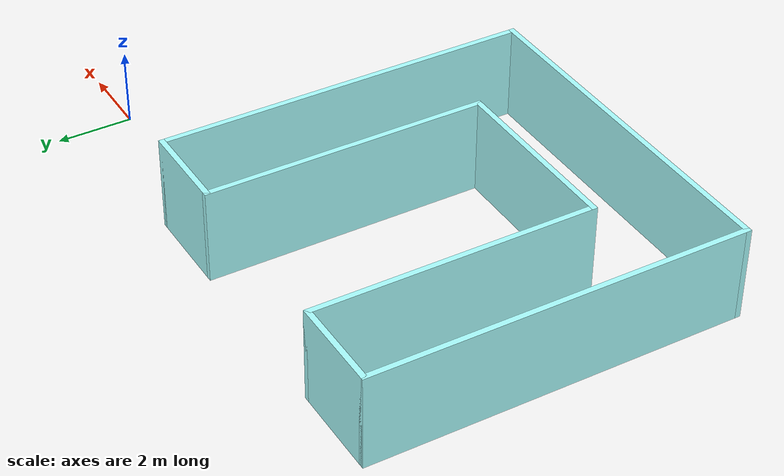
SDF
<?xml version='1.0'?>
<sdf version='1.6'>
  <model name='test_house'>
    <pose frame=''>-9.41906 -3.85062 0 0 -0 0</pose>
    <link name='Wall_0'>
      <collision name='Wall_0_Collision'>
        <geometry>
          <box>
            <size>2.5 0.15 2.5</size>
          </box>
        </geometry>
        <pose frame=''>0 0 1.25 0 -0 0</pose>
      </collision>
      <visual name='Wall_0_Visual'>
        <pose frame=''>0 0 1.25 0 -0 0</pose>
        <geometry>
          <box>
            <size>2.5 0.15 2.5</size>
          </box>
        </geometry>
        <material>
          <script>
            <uri>file://media/materials/scripts/gazebo.material</uri>
            <name>Gazebo/Grey</name>
          </script>
          <ambient>0.666667 1 1 1</ambient>
        </material>
        <meta>
          <layer>0</layer>
        </meta>
      </visual>
      <pose frame=''>-3.575 4.925 0 0 -0 0</pose>
    </link>
    <link name='Wall_1'>
      <collision name='Wall_1_Collision'>
        <geometry>
          <box>
            <size>7.5 0.15 2.5</size>
          </box>
        </geometry>
        <pose frame=''>0 0 1.25 0 -0 0</pose>
      </collision>
      <visual name='Wall_1_Visual'>
        <pose frame=''>0 0 1.25 0 -0 0</pose>
        <geometry>
          <box>
            <size>7.5 0.15 2.5</size>
          </box>
        </geometry>
        <material>
          <script>
            <uri>file://media/materials/scripts/gazebo.material</uri>
            <name>Gazebo/Grey</name>
          </script>
          <ambient>0.666667 1 1 1</ambient>
        </material>
        <meta>
          <layer>0</layer>
        </meta>
      </visual>
      <pose frame=''>-2.4 1.25 0 0 0 -1.5708</pose>
    </link>
    <link name='Wall_2'>
      <collision name='Wall_2_Collision'>
        <geometry>
          <box>
            <size>5 0.15 2.5</size>
          </box>
        </geometry>
        <pose frame=''>0 0 1.25 0 -0 0</pose>
      </collision>
      <visual name='Wall_2_Visual'>
        <pose frame=''>0 0 1.25 0 -0 0</pose>
        <geometry>
          <box>
            <size>5 0.15 2.5</size>
          </box>
        </geometry>
        <material>
          <script>
            <uri>file://media/materials/scripts/gazebo.material</uri>
            <name>Gazebo/Grey</name>
          </script>
          <ambient>0.666667 1 1 1</ambient>
        </material>
        <meta>
          <layer>0</layer>
        </meta>
      </visual>
      <pose frame=''>0.025 -2.425 0 0 -0 0</pose>
    </link>
    <link name='Wall_3'>
      <collision name='Wall_3_Collision'>
        <geometry>
          <box>
            <size>7.5 0.15 2.5</size>
          </box>
        </geometry>
        <pose frame=''>0 0 1.25 0 -0 0</pose>
      </collision>
      <visual name='Wall_3_Visual'>
        <pose frame=''>0 0 1.25 0 -0 0</pose>
        <geometry>
          <box>
            <size>7.5 0.15 2.5</size>
          </box>
        </geometry>
        <material>
          <script>
            <uri>file://media/materials/scripts/gazebo.material</uri>
            <name>Gazebo/Grey</name>
          </script>
          <ambient>0.666667 1 1 1</ambient>
        </material>
        <meta>
          <layer>0</layer>
        </meta>
      </visual>
      <pose frame=''>2.45 1.25 0 0 -0 1.5708</pose>
    </link>
    <link name='Wall_4'>
      <collision name='Wall_4_Collision'>
        <geometry>
          <box>
            <size>2.5 0.15 2.5</size>
          </box>
        </geometry>
        <pose frame=''>0 0 1.25 0 -0 0</pose>
      </collision>
      <visual name='Wall_4_Visual'>
        <pose frame=''>0 0 1.25 0 -0 0</pose>
        <geometry>
          <box>
            <size>2.5 0.15 2.5</size>
          </box>
        </geometry>
        <material>
          <script>
            <uri>file://media/materials/scripts/gazebo.material</uri>
            <name>Gazebo/Grey</name>
          </script>
          <ambient>0.666667 1 1 1</ambient>
        </material>
        <meta>
          <layer>0</layer>
        </meta>
      </visual>
      <pose frame=''>3.625 4.925 0 0 -0 0</pose>
    </link>
    <link name='Wall_5'>
      <collision name='Wall_5_Collision'>
        <geometry>
          <box>
            <size>10 0.15 2.5</size>
          </box>
        </geometry>
        <pose frame=''>0 0 1.25 0 -0 0</pose>
      </collision>
      <visual name='Wall_5_Visual'>
        <pose frame=''>0 0 1.25 0 -0 0</pose>
        <geometry>
          <box>
            <size>10 0.15 2.5</size>
          </box>
        </geometry>
        <material>
          <script>
            <uri>file://media/materials/scripts/gazebo.material</uri>
            <name>Gazebo/Grey</name>
          </script>
          <ambient>0.666667 1 1 1</ambient>
        </material>
        <meta>
          <layer>0</layer>
        </meta>
      </visual>
      <pose frame=''>4.8 0 0 0 0 -1.5708</pose>
    </link>
    <link name='Wall_6'>
      <collision name='Wall_6_Collision'>
        <geometry>
          <box>
            <size>9.75 0.15 2.5</size>
          </box>
        </geometry>
        <pose frame=''>0 0 1.25 0 -0 0</pose>
      </collision>
      <visual name='Wall_6_Visual'>
        <pose frame=''>0 0 1.25 0 -0 0</pose>
        <geometry>
          <box>
            <size>9.75 0.15 2.5</size>
          </box>
        </geometry>
        <material>
          <script>
            <uri>file://media/materials/scripts/gazebo.material</uri>
            <name>Gazebo/Grey</name>
          </script>
          <ambient>0.666667 1 1 1</ambient>
        </material>
        <meta>
          <layer>0</layer>
        </meta>
      </visual>
      <pose frame=''>0 -4.925 0 0 -0 3.14159</pose>
    </link>
    <link name='Wall_9'>
      <collision name='Wall_9_Collision'>
        <geometry>
          <box>
            <size>10 0.15 2.5</size>
          </box>
        </geometry>
        <pose frame=''>0 0 1.25 0 -0 0</pose>
      </collision>
      <visual name='Wall_9_Visual'>
        <pose frame=''>0 0 1.25 0 -0 0</pose>
        <geometry>
          <box>
            <size>10 0.15 2.5</size>
          </box>
        </geometry>
        <material>
          <script>
            <uri>file://media/materials/scripts/gazebo.material</uri>
            <name>Gazebo/Grey</name>
          </script>
          <ambient>0.666667 1 1 1</ambient>
        </material>
        <meta>
          <layer>0</layer>
        </meta>
      </visual>
      <pose frame=''>-4.8 0 0 0 -0 1.5708</pose>
    </link>
    <static>1</static>
  </model>
</sdf>
